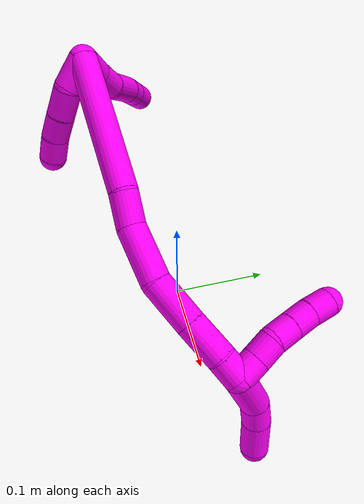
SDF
<sdf version="1.7">
 <world name="default">
  <model name="10">
   <static>0</static>
   <link name="10">
    <collision name="collision-cylinder-e_1_2_8">
     <pose>-0.000711 0.012213 -0.004058 -1.8916 -0.055186 0.076471</pose>
     <geometry><cylinder><radius>0.0125</radius><length>0.025778</length></cylinder></geometry>
     <surface>
      <friction><ode><mu>1.16</mu><mu2>1.16</mu2><slip1>0</slip1><slip2>0</slip2></ode></friction>
      <contact><ode><kp>1e+06</kp><kd>1</kd><max_vel>0</max_vel><min_depth>0.001</min_depth></ode></contact>
     </surface>
    </collision>
    <visual name="visual-cylinder-e_1_2_8">
     <pose>-0.000711 0.012213 -0.004058 -1.8916 -0.055186 0.076471</pose>
     <geometry><cylinder><radius>0.0125</radius><length>0.025778</length></cylinder></geometry>
     <material><ambient>1 0 0.964706 1</ambient></material>
    </visual>
    <collision name="collision-cylinder-e_2_8_9">
     <pose>-0.001595 0.037327 -0.011709 -1.8424 -0.012908 0.016994</pose>
     <geometry><cylinder><radius>0.0125</radius><length>0.026787</length></cylinder></geometry>
     <surface>
      <friction><ode><mu>1.16</mu><mu2>1.16</mu2><slip1>0</slip1><slip2>0</slip2></ode></friction>
      <contact><ode><kp>1e+06</kp><kd>1</kd><max_vel>0</max_vel><min_depth>0.001</min_depth></ode></contact>
     </surface>
    </collision>
    <visual name="visual-cylinder-e_2_8_9">
     <pose>-0.001595 0.037327 -0.011709 -1.8424 -0.012908 0.016994</pose>
     <geometry><cylinder><radius>0.0125</radius><length>0.026787</length></cylinder></geometry>
     <material><ambient>1 0 0.964706 1</ambient></material>
    </visual>
    <collision name="collision-cylinder-e_3_9_10">
     <pose>-0.006911 0.072029 -0.01548 -1.57896 -0.231666 0.233548</pose>
     <geometry><cylinder><radius>0.0125</radius><length>0.0448</length></cylinder></geometry>
     <surface>
      <friction><ode><mu>1.16</mu><mu2>1.16</mu2><slip1>0</slip1><slip2>0</slip2></ode></friction>
      <contact><ode><kp>1e+06</kp><kd>1</kd><max_vel>0</max_vel><min_depth>0.001</min_depth></ode></contact>
     </surface>
    </collision>
    <visual name="visual-cylinder-e_3_9_10">
     <pose>-0.006911 0.072029 -0.01548 -1.57896 -0.231666 0.233548</pose>
     <geometry><cylinder><radius>0.0125</radius><length>0.0448</length></cylinder></geometry>
     <material><ambient>1 0 0.964706 1</ambient></material>
    </visual>
    <collision name="collision-cylinder-e_4_10_11">
     <pose>-0.014964 0.104501 -0.016752 -1.673 -0.264927 0.293101</pose>
     <geometry><cylinder><radius>0.0125</radius><length>0.02223</length></cylinder></geometry>
     <surface>
      <friction><ode><mu>1.16</mu><mu2>1.16</mu2><slip1>0</slip1><slip2>0</slip2></ode></friction>
      <contact><ode><kp>1e+06</kp><kd>1</kd><max_vel>0</max_vel><min_depth>0.001</min_depth></ode></contact>
     </surface>
    </collision>
    <visual name="visual-cylinder-e_4_10_11">
     <pose>-0.014964 0.104501 -0.016752 -1.673 -0.264927 0.293101</pose>
     <geometry><cylinder><radius>0.0125</radius><length>0.02223</length></cylinder></geometry>
     <material><ambient>1 0 0.964706 1</ambient></material>
    </visual>
    <collision name="collision-cylinder-e_5_11_6">
     <pose>-0.021854 0.129763 -0.019397 -1.67667 -0.264873 0.29411</pose>
     <geometry><cylinder><radius>0.0125</radius><length>0.030405</length></cylinder></geometry>
     <surface>
      <friction><ode><mu>1.16</mu><mu2>1.16</mu2><slip1>0</slip1><slip2>0</slip2></ode></friction>
      <contact><ode><kp>1e+06</kp><kd>1</kd><max_vel>0</max_vel><min_depth>0.001</min_depth></ode></contact>
     </surface>
    </collision>
    <visual name="visual-cylinder-e_5_11_6">
     <pose>-0.021854 0.129763 -0.019397 -1.67667 -0.264873 0.29411</pose>
     <geometry><cylinder><radius>0.0125</radius><length>0.030405</length></cylinder></geometry>
     <material><ambient>1 0 0.964706 1</ambient></material>
    </visual>
    <collision name="collision-cylinder-e_1_2_12">
     <pose>-0.003957 -0.000805 -0.013299 3.0811 -0.2887 -2.73118</pose>
     <geometry><cylinder><radius>0.0125</radius><length>0.027797</length></cylinder></geometry>
     <surface>
      <friction><ode><mu>1.16</mu><mu2>1.16</mu2><slip1>0</slip1><slip2>0</slip2></ode></friction>
      <contact><ode><kp>1e+06</kp><kd>1</kd><max_vel>0</max_vel><min_depth>0.001</min_depth></ode></contact>
     </surface>
    </collision>
    <visual name="visual-cylinder-e_1_2_12">
     <pose>-0.003957 -0.000805 -0.013299 3.0811 -0.2887 -2.73118</pose>
     <geometry><cylinder><radius>0.0125</radius><length>0.027797</length></cylinder></geometry>
     <material><ambient>1 0 0.964706 1</ambient></material>
    </visual>
    <collision name="collision-cylinder-e_2_12_13">
     <pose>-0.011469 0.001929 -0.038906 -2.86159 -0.270786 1.5369</pose>
     <geometry><cylinder><radius>0.0125</radius><length>0.026583</length></cylinder></geometry>
     <surface>
      <friction><ode><mu>1.16</mu><mu2>1.16</mu2><slip1>0</slip1><slip2>0</slip2></ode></friction>
      <contact><ode><kp>1e+06</kp><kd>1</kd><max_vel>0</max_vel><min_depth>0.001</min_depth></ode></contact>
     </surface>
    </collision>
    <visual name="visual-cylinder-e_2_12_13">
     <pose>-0.011469 0.001929 -0.038906 -2.86159 -0.270786 1.5369</pose>
     <geometry><cylinder><radius>0.0125</radius><length>0.026583</length></cylinder></geometry>
     <material><ambient>1 0 0.964706 1</ambient></material>
    </visual>
    <collision name="collision-cylinder-e_3_13_14">
     <pose>-0.018405 0.00914 -0.061797 -2.80757 -0.293074 1.43825</pose>
     <geometry><cylinder><radius>0.0125</radius><length>0.0234</length></cylinder></geometry>
     <surface>
      <friction><ode><mu>1.16</mu><mu2>1.16</mu2><slip1>0</slip1><slip2>0</slip2></ode></friction>
      <contact><ode><kp>1e+06</kp><kd>1</kd><max_vel>0</max_vel><min_depth>0.001</min_depth></ode></contact>
     </surface>
    </collision>
    <visual name="visual-cylinder-e_3_13_14">
     <pose>-0.018405 0.00914 -0.061797 -2.80757 -0.293074 1.43825</pose>
     <geometry><cylinder><radius>0.0125</radius><length>0.0234</length></cylinder></geometry>
     <material><ambient>1 0 0.964706 1</ambient></material>
    </visual>
    <collision name="collision-cylinder-e_4_14_5">
     <pose>-0.023873 0.016896 -0.082498 -2.75807 -0.189098 0.908726</pose>
     <geometry><cylinder><radius>0.0125</radius><length>0.02222</length></cylinder></geometry>
     <surface>
      <friction><ode><mu>1.16</mu><mu2>1.16</mu2><slip1>0</slip1><slip2>0</slip2></ode></friction>
      <contact><ode><kp>1e+06</kp><kd>1</kd><max_vel>0</max_vel><min_depth>0.001</min_depth></ode></contact>
     </surface>
    </collision>
    <visual name="visual-cylinder-e_4_14_5">
     <pose>-0.023873 0.016896 -0.082498 -2.75807 -0.189098 0.908726</pose>
     <geometry><cylinder><radius>0.0125</radius><length>0.02222</length></cylinder></geometry>
     <material><ambient>1 0 0.964706 1</ambient></material>
    </visual>
    <collision name="collision-cylinder-e_1_2_15">
     <pose>0.041239 -0.009941 -0.045019 2.92425 0.729764 2.58518</pose>
     <geometry><cylinder><radius>0.0125</radius><length>0.123712</length></cylinder></geometry>
     <surface>
      <friction><ode><mu>1.16</mu><mu2>1.16</mu2><slip1>0</slip1><slip2>0</slip2></ode></friction>
      <contact><ode><kp>1e+06</kp><kd>1</kd><max_vel>0</max_vel><min_depth>0.001</min_depth></ode></contact>
     </surface>
    </collision>
    <visual name="visual-cylinder-e_1_2_15">
     <pose>0.041239 -0.009941 -0.045019 2.92425 0.729764 2.58518</pose>
     <geometry><cylinder><radius>0.0125</radius><length>0.123712</length></cylinder></geometry>
     <material><ambient>1 0 0.964706 1</ambient></material>
    </visual>
    <collision name="collision-cylinder-e_2_15_16">
     <pose>0.090402 -0.020388 -0.10233 3.10053 0.572173 3.00219</pose>
     <geometry><cylinder><radius>0.0125</radius><length>0.029269</length></cylinder></geometry>
     <surface>
      <friction><ode><mu>1.16</mu><mu2>1.16</mu2><slip1>0</slip1><slip2>0</slip2></ode></friction>
      <contact><ode><kp>1e+06</kp><kd>1</kd><max_vel>0</max_vel><min_depth>0.001</min_depth></ode></contact>
     </surface>
    </collision>
    <visual name="visual-cylinder-e_2_15_16">
     <pose>0.090402 -0.020388 -0.10233 3.10053 0.572173 3.00219</pose>
     <geometry><cylinder><radius>0.0125</radius><length>0.029269</length></cylinder></geometry>
     <material><ambient>1 0 0.964706 1</ambient></material>
    </visual>
    <collision name="collision-cylinder-e_3_16_17">
     <pose>0.116569 -0.023461 -0.13063 2.98253 0.844287 2.79036</pose>
     <geometry><cylinder><radius>0.0125</radius><length>0.04881</length></cylinder></geometry>
     <surface>
      <friction><ode><mu>1.16</mu><mu2>1.16</mu2><slip1>0</slip1><slip2>0</slip2></ode></friction>
      <contact><ode><kp>1e+06</kp><kd>1</kd><max_vel>0</max_vel><min_depth>0.001</min_depth></ode></contact>
     </surface>
    </collision>
    <visual name="visual-cylinder-e_3_16_17">
     <pose>0.116569 -0.023461 -0.13063 2.98253 0.844287 2.79036</pose>
     <geometry><cylinder><radius>0.0125</radius><length>0.04881</length></cylinder></geometry>
     <material><ambient>1 0 0.964706 1</ambient></material>
    </visual>
    <collision name="collision-cylinder-e_4_17_18">
     <pose>0.152575 -0.023502 -0.157089 -2.90444 1.02645 -2.72497</pose>
     <geometry><cylinder><radius>0.0125</radius><length>0.041531</length></cylinder></geometry>
     <surface>
      <friction><ode><mu>1.16</mu><mu2>1.16</mu2><slip1>0</slip1><slip2>0</slip2></ode></friction>
      <contact><ode><kp>1e+06</kp><kd>1</kd><max_vel>0</max_vel><min_depth>0.001</min_depth></ode></contact>
     </surface>
    </collision>
    <visual name="visual-cylinder-e_4_17_18">
     <pose>0.152575 -0.023502 -0.157089 -2.90444 1.02645 -2.72497</pose>
     <geometry><cylinder><radius>0.0125</radius><length>0.041531</length></cylinder></geometry>
     <material><ambient>1 0 0.964706 1</ambient></material>
    </visual>
    <collision name="collision-cylinder-e_5_18_19">
     <pose>0.185817 -0.018593 -0.176126 -2.87082 1.04852 -2.67887</pose>
     <geometry><cylinder><radius>0.0125</radius><length>0.035716</length></cylinder></geometry>
     <surface>
      <friction><ode><mu>1.16</mu><mu2>1.16</mu2><slip1>0</slip1><slip2>0</slip2></ode></friction>
      <contact><ode><kp>1e+06</kp><kd>1</kd><max_vel>0</max_vel><min_depth>0.001</min_depth></ode></contact>
     </surface>
    </collision>
    <visual name="visual-cylinder-e_5_18_19">
     <pose>0.185817 -0.018593 -0.176126 -2.87082 1.04852 -2.67887</pose>
     <geometry><cylinder><radius>0.0125</radius><length>0.035716</length></cylinder></geometry>
     <material><ambient>1 0 0.964706 1</ambient></material>
    </visual>
    <collision name="collision-cylinder-e_6_19_1">
     <pose>0.209594 -0.013505 -0.190511 -2.70531 0.91387 -2.29442</pose>
     <geometry><cylinder><radius>0.0125</radius><length>0.020962</length></cylinder></geometry>
     <surface>
      <friction><ode><mu>1.16</mu><mu2>1.16</mu2><slip1>0</slip1><slip2>0</slip2></ode></friction>
      <contact><ode><kp>1e+06</kp><kd>1</kd><max_vel>0</max_vel><min_depth>0.001</min_depth></ode></contact>
     </surface>
    </collision>
    <visual name="visual-cylinder-e_6_19_1">
     <pose>0.209594 -0.013505 -0.190511 -2.70531 0.91387 -2.29442</pose>
     <geometry><cylinder><radius>0.0125</radius><length>0.020962</length></cylinder></geometry>
     <material><ambient>1 0 0.964706 1</ambient></material>
    </visual>
    <collision name="collision-cylinder-e_1_1_20">
     <pose>0.22044 -0.004593 -0.188897 -0.69701 0.257436 -0.093986</pose>
     <geometry><cylinder><radius>0.0125</radius><length>0.02</length></cylinder></geometry>
     <surface>
      <friction><ode><mu>1.16</mu><mu2>1.16</mu2><slip1>0</slip1><slip2>0</slip2></ode></friction>
      <contact><ode><kp>1e+06</kp><kd>1</kd><max_vel>0</max_vel><min_depth>0.001</min_depth></ode></contact>
     </surface>
    </collision>
    <visual name="visual-cylinder-e_1_1_20">
     <pose>0.22044 -0.004593 -0.188897 -0.69701 0.257436 -0.093986</pose>
     <geometry><cylinder><radius>0.0125</radius><length>0.02</length></cylinder></geometry>
     <material><ambient>1 0 0.964706 1</ambient></material>
    </visual>
    <collision name="collision-cylinder-e_2_20_21">
     <pose>0.225614 0.006916 -0.173421 -0.581668 0.265974 -0.080042</pose>
     <geometry><cylinder><radius>0.0125</radius><length>0.02</length></cylinder></geometry>
     <surface>
      <friction><ode><mu>1.16</mu><mu2>1.16</mu2><slip1>0</slip1><slip2>0</slip2></ode></friction>
      <contact><ode><kp>1e+06</kp><kd>1</kd><max_vel>0</max_vel><min_depth>0.001</min_depth></ode></contact>
     </surface>
    </collision>
    <visual name="visual-cylinder-e_2_20_21">
     <pose>0.225614 0.006916 -0.173421 -0.581668 0.265974 -0.080042</pose>
     <geometry><cylinder><radius>0.0125</radius><length>0.02</length></cylinder></geometry>
     <material><ambient>1 0 0.964706 1</ambient></material>
    </visual>
    <collision name="collision-cylinder-e_3_21_22">
     <pose>0.231676 0.019606 -0.159562 -0.905549 0.350481 -0.171845</pose>
     <geometry><cylinder><radius>0.0125</radius><length>0.02</length></cylinder></geometry>
     <surface>
      <friction><ode><mu>1.16</mu><mu2>1.16</mu2><slip1>0</slip1><slip2>0</slip2></ode></friction>
      <contact><ode><kp>1e+06</kp><kd>1</kd><max_vel>0</max_vel><min_depth>0.001</min_depth></ode></contact>
     </surface>
    </collision>
    <visual name="visual-cylinder-e_3_21_22">
     <pose>0.231676 0.019606 -0.159562 -0.905549 0.350481 -0.171845</pose>
     <geometry><cylinder><radius>0.0125</radius><length>0.02</length></cylinder></geometry>
     <material><ambient>1 0 0.964706 1</ambient></material>
    </visual>
    <collision name="collision-cylinder-e_4_22_23">
     <pose>0.238742 0.034199 -0.147855 -0.883727 0.371723 -0.177433</pose>
     <geometry><cylinder><radius>0.0125</radius><length>0.02</length></cylinder></geometry>
     <surface>
      <friction><ode><mu>1.16</mu><mu2>1.16</mu2><slip1>0</slip1><slip2>0</slip2></ode></friction>
      <contact><ode><kp>1e+06</kp><kd>1</kd><max_vel>0</max_vel><min_depth>0.001</min_depth></ode></contact>
     </surface>
    </collision>
    <visual name="visual-cylinder-e_4_22_23">
     <pose>0.238742 0.034199 -0.147855 -0.883727 0.371723 -0.177433</pose>
     <geometry><cylinder><radius>0.0125</radius><length>0.02</length></cylinder></geometry>
     <material><ambient>1 0 0.964706 1</ambient></material>
    </visual>
    <collision name="collision-cylinder-e_5_23_4">
     <pose>0.246899 0.048446 -0.136477 -0.910726 0.469509 -0.233169</pose>
     <geometry><cylinder><radius>0.0125</radius><length>0.02</length></cylinder></geometry>
     <surface>
      <friction><ode><mu>1.16</mu><mu2>1.16</mu2><slip1>0</slip1><slip2>0</slip2></ode></friction>
      <contact><ode><kp>1e+06</kp><kd>1</kd><max_vel>0</max_vel><min_depth>0.001</min_depth></ode></contact>
     </surface>
    </collision>
    <visual name="visual-cylinder-e_5_23_4">
     <pose>0.246899 0.048446 -0.136477 -0.910726 0.469509 -0.233169</pose>
     <geometry><cylinder><radius>0.0125</radius><length>0.02</length></cylinder></geometry>
     <material><ambient>1 0 0.964706 1</ambient></material>
    </visual>
    <collision name="collision-cylinder-e_1_1_24">
     <pose>0.223526 0.004979 -0.21061 -2.30698 0.258583 -0.570526</pose>
     <geometry><cylinder><radius>0.0125</radius><length>0.044051</length></cylinder></geometry>
     <surface>
      <friction><ode><mu>1.16</mu><mu2>1.16</mu2><slip1>0</slip1><slip2>0</slip2></ode></friction>
      <contact><ode><kp>1e+06</kp><kd>1</kd><max_vel>0</max_vel><min_depth>0.001</min_depth></ode></contact>
     </surface>
    </collision>
    <visual name="visual-cylinder-e_1_1_24">
     <pose>0.223526 0.004979 -0.21061 -2.30698 0.258583 -0.570526</pose>
     <geometry><cylinder><radius>0.0125</radius><length>0.044051</length></cylinder></geometry>
     <material><ambient>1 0 0.964706 1</ambient></material>
    </visual>
    <collision name="collision-cylinder-e_2_24_25">
     <pose>0.231405 0.02596 -0.234683 -2.65255 0.200175 -0.765276</pose>
     <geometry><cylinder><radius>0.0125</radius><length>0.022597</length></cylinder></geometry>
     <surface>
      <friction><ode><mu>1.16</mu><mu2>1.16</mu2><slip1>0</slip1><slip2>0</slip2></ode></friction>
      <contact><ode><kp>1e+06</kp><kd>1</kd><max_vel>0</max_vel><min_depth>0.001</min_depth></ode></contact>
     </surface>
    </collision>
    <visual name="visual-cylinder-e_2_24_25">
     <pose>0.231405 0.02596 -0.234683 -2.65255 0.200175 -0.765276</pose>
     <geometry><cylinder><radius>0.0125</radius><length>0.022597</length></cylinder></geometry>
     <material><ambient>1 0 0.964706 1</ambient></material>
    </visual>
    <collision name="collision-cylinder-e_3_25_3">
     <pose>0.235581 0.037108 -0.259917 -2.77442 0.115958 -0.605967</pose>
     <geometry><cylinder><radius>0.0125</radius><length>0.033352</length></cylinder></geometry>
     <surface>
      <friction><ode><mu>1.16</mu><mu2>1.16</mu2><slip1>0</slip1><slip2>0</slip2></ode></friction>
      <contact><ode><kp>1e+06</kp><kd>1</kd><max_vel>0</max_vel><min_depth>0.001</min_depth></ode></contact>
     </surface>
    </collision>
    <visual name="visual-cylinder-e_3_25_3">
     <pose>0.235581 0.037108 -0.259917 -2.77442 0.115958 -0.605967</pose>
     <geometry><cylinder><radius>0.0125</radius><length>0.033352</length></cylinder></geometry>
     <material><ambient>1 0 0.964706 1</ambient></material>
    </visual>
    <collision name="collision-sphere-3">
     <pose>0.23751 0.043054 -0.275377 0 -0 0</pose>
     <geometry><sphere><radius>0.0125</radius></sphere></geometry>
     <surface>
      <friction><ode><mu>1.16</mu><mu2>1.16</mu2><slip1>0</slip1><slip2>0</slip2></ode></friction>
      <contact><ode><kp>1e+06</kp><kd>1</kd><max_vel>0</max_vel><min_depth>0.001</min_depth></ode></contact>
     </surface>
    </collision>
    <visual name="visual-sphere-3">
     <pose>0.23751 0.043054 -0.275377 0 -0 0</pose>
     <geometry><sphere><radius>0.0125</radius></sphere></geometry>
     <material><ambient>1 0 0.964706 1</ambient></material>
    </visual>
    <collision name="collision-sphere-25">
     <pose>0.233651 0.031161 -0.244457 0 -0 0</pose>
     <geometry><sphere><radius>0.0125</radius></sphere></geometry>
     <surface>
      <friction><ode><mu>1.16</mu><mu2>1.16</mu2><slip1>0</slip1><slip2>0</slip2></ode></friction>
      <contact><ode><kp>1e+06</kp><kd>1</kd><max_vel>0</max_vel><min_depth>0.001</min_depth></ode></contact>
     </surface>
    </collision>
    <visual name="visual-sphere-25">
     <pose>0.233651 0.031161 -0.244457 0 -0 0</pose>
     <geometry><sphere><radius>0.0125</radius></sphere></geometry>
     <material><ambient>1 0 0.964706 1</ambient></material>
    </visual>
    <collision name="collision-sphere-24">
     <pose>0.229158 0.020758 -0.224908 0 -0 0</pose>
     <geometry><sphere><radius>0.0125</radius></sphere></geometry>
     <surface>
      <friction><ode><mu>1.16</mu><mu2>1.16</mu2><slip1>0</slip1><slip2>0</slip2></ode></friction>
      <contact><ode><kp>1e+06</kp><kd>1</kd><max_vel>0</max_vel><min_depth>0.001</min_depth></ode></contact>
     </surface>
    </collision>
    <visual name="visual-sphere-24">
     <pose>0.229158 0.020758 -0.224908 0 -0 0</pose>
     <geometry><sphere><radius>0.0125</radius></sphere></geometry>
     <material><ambient>1 0 0.964706 1</ambient></material>
    </visual>
    <collision name="collision-sphere-4">
     <pose>0.251423 0.055491 -0.131009 0 -0 0</pose>
     <geometry><sphere><radius>0.0125</radius></sphere></geometry>
     <surface>
      <friction><ode><mu>1.16</mu><mu2>1.16</mu2><slip1>0</slip1><slip2>0</slip2></ode></friction>
      <contact><ode><kp>1e+06</kp><kd>1</kd><max_vel>0</max_vel><min_depth>0.001</min_depth></ode></contact>
     </surface>
    </collision>
    <visual name="visual-sphere-4">
     <pose>0.251423 0.055491 -0.131009 0 -0 0</pose>
     <geometry><sphere><radius>0.0125</radius></sphere></geometry>
     <material><ambient>1 0 0.964706 1</ambient></material>
    </visual>
    <collision name="collision-sphere-23">
     <pose>0.242374 0.041402 -0.141945 0 -0 0</pose>
     <geometry><sphere><radius>0.0125</radius></sphere></geometry>
     <surface>
      <friction><ode><mu>1.16</mu><mu2>1.16</mu2><slip1>0</slip1><slip2>0</slip2></ode></friction>
      <contact><ode><kp>1e+06</kp><kd>1</kd><max_vel>0</max_vel><min_depth>0.001</min_depth></ode></contact>
     </surface>
    </collision>
    <visual name="visual-sphere-23">
     <pose>0.242374 0.041402 -0.141945 0 -0 0</pose>
     <geometry><sphere><radius>0.0125</radius></sphere></geometry>
     <material><ambient>1 0 0.964706 1</ambient></material>
    </visual>
    <collision name="collision-sphere-22">
     <pose>0.23511 0.026996 -0.153764 0 -0 0</pose>
     <geometry><sphere><radius>0.0125</radius></sphere></geometry>
     <surface>
      <friction><ode><mu>1.16</mu><mu2>1.16</mu2><slip1>0</slip1><slip2>0</slip2></ode></friction>
      <contact><ode><kp>1e+06</kp><kd>1</kd><max_vel>0</max_vel><min_depth>0.001</min_depth></ode></contact>
     </surface>
    </collision>
    <visual name="visual-sphere-22">
     <pose>0.23511 0.026996 -0.153764 0 -0 0</pose>
     <geometry><sphere><radius>0.0125</radius></sphere></geometry>
     <material><ambient>1 0 0.964706 1</ambient></material>
    </visual>
    <collision name="collision-sphere-21">
     <pose>0.228243 0.012217 -0.165359 0 -0 0</pose>
     <geometry><sphere><radius>0.0125</radius></sphere></geometry>
     <surface>
      <friction><ode><mu>1.16</mu><mu2>1.16</mu2><slip1>0</slip1><slip2>0</slip2></ode></friction>
      <contact><ode><kp>1e+06</kp><kd>1</kd><max_vel>0</max_vel><min_depth>0.001</min_depth></ode></contact>
     </surface>
    </collision>
    <visual name="visual-sphere-21">
     <pose>0.228243 0.012217 -0.165359 0 -0 0</pose>
     <geometry><sphere><radius>0.0125</radius></sphere></geometry>
     <material><ambient>1 0 0.964706 1</ambient></material>
    </visual>
    <collision name="collision-sphere-20">
     <pose>0.222986 0.001615 -0.181482 0 -0 0</pose>
     <geometry><sphere><radius>0.0125</radius></sphere></geometry>
     <surface>
      <friction><ode><mu>1.16</mu><mu2>1.16</mu2><slip1>0</slip1><slip2>0</slip2></ode></friction>
      <contact><ode><kp>1e+06</kp><kd>1</kd><max_vel>0</max_vel><min_depth>0.001</min_depth></ode></contact>
     </surface>
    </collision>
    <visual name="visual-sphere-20">
     <pose>0.222986 0.001615 -0.181482 0 -0 0</pose>
     <geometry><sphere><radius>0.0125</radius></sphere></geometry>
     <material><ambient>1 0 0.964706 1</ambient></material>
    </visual>
    <collision name="collision-sphere-6">
     <pose>-0.025834 0.144353 -0.020948 0 -0 0</pose>
     <geometry><sphere><radius>0.0125</radius></sphere></geometry>
     <surface>
      <friction><ode><mu>1.16</mu><mu2>1.16</mu2><slip1>0</slip1><slip2>0</slip2></ode></friction>
      <contact><ode><kp>1e+06</kp><kd>1</kd><max_vel>0</max_vel><min_depth>0.001</min_depth></ode></contact>
     </surface>
    </collision>
    <visual name="visual-sphere-6">
     <pose>-0.025834 0.144353 -0.020948 0 -0 0</pose>
     <geometry><sphere><radius>0.0125</radius></sphere></geometry>
     <material><ambient>1 0 0.964706 1</ambient></material>
    </visual>
    <collision name="collision-sphere-11">
     <pose>-0.017874 0.115173 -0.017847 0 -0 0</pose>
     <geometry><sphere><radius>0.0125</radius></sphere></geometry>
     <surface>
      <friction><ode><mu>1.16</mu><mu2>1.16</mu2><slip1>0</slip1><slip2>0</slip2></ode></friction>
      <contact><ode><kp>1e+06</kp><kd>1</kd><max_vel>0</max_vel><min_depth>0.001</min_depth></ode></contact>
     </surface>
    </collision>
    <visual name="visual-sphere-11">
     <pose>-0.017874 0.115173 -0.017847 0 -0 0</pose>
     <geometry><sphere><radius>0.0125</radius></sphere></geometry>
     <material><ambient>1 0 0.964706 1</ambient></material>
    </visual>
    <collision name="collision-sphere-10">
     <pose>-0.012054 0.09383 -0.015658 0 -0 0</pose>
     <geometry><sphere><radius>0.0125</radius></sphere></geometry>
     <surface>
      <friction><ode><mu>1.16</mu><mu2>1.16</mu2><slip1>0</slip1><slip2>0</slip2></ode></friction>
      <contact><ode><kp>1e+06</kp><kd>1</kd><max_vel>0</max_vel><min_depth>0.001</min_depth></ode></contact>
     </surface>
    </collision>
    <visual name="visual-sphere-10">
     <pose>-0.012054 0.09383 -0.015658 0 -0 0</pose>
     <geometry><sphere><radius>0.0125</radius></sphere></geometry>
     <material><ambient>1 0 0.964706 1</ambient></material>
    </visual>
    <collision name="collision-sphere-9">
     <pose>-0.001768 0.050228 -0.015302 0 -0 0</pose>
     <geometry><sphere><radius>0.0125</radius></sphere></geometry>
     <surface>
      <friction><ode><mu>1.16</mu><mu2>1.16</mu2><slip1>0</slip1><slip2>0</slip2></ode></friction>
      <contact><ode><kp>1e+06</kp><kd>1</kd><max_vel>0</max_vel><min_depth>0.001</min_depth></ode></contact>
     </surface>
    </collision>
    <visual name="visual-sphere-9">
     <pose>-0.001768 0.050228 -0.015302 0 -0 0</pose>
     <geometry><sphere><radius>0.0125</radius></sphere></geometry>
     <material><ambient>1 0 0.964706 1</ambient></material>
    </visual>
    <collision name="collision-sphere-2">
     <geometry><sphere><radius>0.0125</radius></sphere></geometry>
     <surface>
      <friction><ode><mu>1.16</mu><mu2>1.16</mu2><slip1>0</slip1><slip2>0</slip2></ode></friction>
      <contact><ode><kp>1e+06</kp><kd>1</kd><max_vel>0</max_vel><min_depth>0.001</min_depth></ode></contact>
     </surface>
    </collision>
    <visual name="visual-sphere-2">
     <geometry><sphere><radius>0.0125</radius></sphere></geometry>
     <material><ambient>1 0 0.964706 1</ambient></material>
    </visual>
    <collision name="collision-sphere-19">
     <pose>0.201294 -0.01621 -0.18471 0 -0 0</pose>
     <geometry><sphere><radius>0.0125</radius></sphere></geometry>
     <surface>
      <friction><ode><mu>1.16</mu><mu2>1.16</mu2><slip1>0</slip1><slip2>0</slip2></ode></friction>
      <contact><ode><kp>1e+06</kp><kd>1</kd><max_vel>0</max_vel><min_depth>0.001</min_depth></ode></contact>
     </surface>
    </collision>
    <visual name="visual-sphere-19">
     <pose>0.201294 -0.01621 -0.18471 0 -0 0</pose>
     <geometry><sphere><radius>0.0125</radius></sphere></geometry>
     <material><ambient>1 0 0.964706 1</ambient></material>
    </visual>
    <collision name="collision-sphere-8">
     <pose>-0.001422 0.024425 -0.008116 0 -0 0</pose>
     <geometry><sphere><radius>0.0125</radius></sphere></geometry>
     <surface>
      <friction><ode><mu>1.16</mu><mu2>1.16</mu2><slip1>0</slip1><slip2>0</slip2></ode></friction>
      <contact><ode><kp>1e+06</kp><kd>1</kd><max_vel>0</max_vel><min_depth>0.001</min_depth></ode></contact>
     </surface>
    </collision>
    <visual name="visual-sphere-8">
     <pose>-0.001422 0.024425 -0.008116 0 -0 0</pose>
     <geometry><sphere><radius>0.0125</radius></sphere></geometry>
     <material><ambient>1 0 0.964706 1</ambient></material>
    </visual>
    <collision name="collision-sphere-12">
     <pose>-0.007914 -0.001611 -0.026598 0 -0 0</pose>
     <geometry><sphere><radius>0.0125</radius></sphere></geometry>
     <surface>
      <friction><ode><mu>1.16</mu><mu2>1.16</mu2><slip1>0</slip1><slip2>0</slip2></ode></friction>
      <contact><ode><kp>1e+06</kp><kd>1</kd><max_vel>0</max_vel><min_depth>0.001</min_depth></ode></contact>
     </surface>
    </collision>
    <visual name="visual-sphere-12">
     <pose>-0.007914 -0.001611 -0.026598 0 -0 0</pose>
     <geometry><sphere><radius>0.0125</radius></sphere></geometry>
     <material><ambient>1 0 0.964706 1</ambient></material>
    </visual>
    <collision name="collision-sphere-13">
     <pose>-0.015025 0.005468 -0.051215 0 -0 0</pose>
     <geometry><sphere><radius>0.0125</radius></sphere></geometry>
     <surface>
      <friction><ode><mu>1.16</mu><mu2>1.16</mu2><slip1>0</slip1><slip2>0</slip2></ode></friction>
      <contact><ode><kp>1e+06</kp><kd>1</kd><max_vel>0</max_vel><min_depth>0.001</min_depth></ode></contact>
     </surface>
    </collision>
    <visual name="visual-sphere-13">
     <pose>-0.015025 0.005468 -0.051215 0 -0 0</pose>
     <geometry><sphere><radius>0.0125</radius></sphere></geometry>
     <material><ambient>1 0 0.964706 1</ambient></material>
    </visual>
    <collision name="collision-sphere-14">
     <pose>-0.021785 0.012812 -0.072379 0 -0 0</pose>
     <geometry><sphere><radius>0.0125</radius></sphere></geometry>
     <surface>
      <friction><ode><mu>1.16</mu><mu2>1.16</mu2><slip1>0</slip1><slip2>0</slip2></ode></friction>
      <contact><ode><kp>1e+06</kp><kd>1</kd><max_vel>0</max_vel><min_depth>0.001</min_depth></ode></contact>
     </surface>
    </collision>
    <visual name="visual-sphere-14">
     <pose>-0.021785 0.012812 -0.072379 0 -0 0</pose>
     <geometry><sphere><radius>0.0125</radius></sphere></geometry>
     <material><ambient>1 0 0.964706 1</ambient></material>
    </visual>
    <collision name="collision-sphere-5">
     <pose>-0.025962 0.020979 -0.092617 0 -0 0</pose>
     <geometry><sphere><radius>0.0125</radius></sphere></geometry>
     <surface>
      <friction><ode><mu>1.16</mu><mu2>1.16</mu2><slip1>0</slip1><slip2>0</slip2></ode></friction>
      <contact><ode><kp>1e+06</kp><kd>1</kd><max_vel>0</max_vel><min_depth>0.001</min_depth></ode></contact>
     </surface>
    </collision>
    <visual name="visual-sphere-5">
     <pose>-0.025962 0.020979 -0.092617 0 -0 0</pose>
     <geometry><sphere><radius>0.0125</radius></sphere></geometry>
     <material><ambient>1 0 0.964706 1</ambient></material>
    </visual>
    <collision name="collision-sphere-15">
     <pose>0.082478 -0.019883 -0.090037 0 -0 0</pose>
     <geometry><sphere><radius>0.0125</radius></sphere></geometry>
     <surface>
      <friction><ode><mu>1.16</mu><mu2>1.16</mu2><slip1>0</slip1><slip2>0</slip2></ode></friction>
      <contact><ode><kp>1e+06</kp><kd>1</kd><max_vel>0</max_vel><min_depth>0.001</min_depth></ode></contact>
     </surface>
    </collision>
    <visual name="visual-sphere-15">
     <pose>0.082478 -0.019883 -0.090037 0 -0 0</pose>
     <geometry><sphere><radius>0.0125</radius></sphere></geometry>
     <material><ambient>1 0 0.964706 1</ambient></material>
    </visual>
    <collision name="collision-sphere-16">
     <pose>0.098326 -0.020893 -0.114624 0 -0 0</pose>
     <geometry><sphere><radius>0.0125</radius></sphere></geometry>
     <surface>
      <friction><ode><mu>1.16</mu><mu2>1.16</mu2><slip1>0</slip1><slip2>0</slip2></ode></friction>
      <contact><ode><kp>1e+06</kp><kd>1</kd><max_vel>0</max_vel><min_depth>0.001</min_depth></ode></contact>
     </surface>
    </collision>
    <visual name="visual-sphere-16">
     <pose>0.098326 -0.020893 -0.114624 0 -0 0</pose>
     <geometry><sphere><radius>0.0125</radius></sphere></geometry>
     <material><ambient>1 0 0.964706 1</ambient></material>
    </visual>
    <collision name="collision-sphere-17">
     <pose>0.134811 -0.026029 -0.146637 0 -0 0</pose>
     <geometry><sphere><radius>0.0125</radius></sphere></geometry>
     <surface>
      <friction><ode><mu>1.16</mu><mu2>1.16</mu2><slip1>0</slip1><slip2>0</slip2></ode></friction>
      <contact><ode><kp>1e+06</kp><kd>1</kd><max_vel>0</max_vel><min_depth>0.001</min_depth></ode></contact>
     </surface>
    </collision>
    <visual name="visual-sphere-17">
     <pose>0.134811 -0.026029 -0.146637 0 -0 0</pose>
     <geometry><sphere><radius>0.0125</radius></sphere></geometry>
     <material><ambient>1 0 0.964706 1</ambient></material>
    </visual>
    <collision name="collision-sphere-18">
     <pose>0.170339 -0.020976 -0.167542 0 -0 0</pose>
     <geometry><sphere><radius>0.0125</radius></sphere></geometry>
     <surface>
      <friction><ode><mu>1.16</mu><mu2>1.16</mu2><slip1>0</slip1><slip2>0</slip2></ode></friction>
      <contact><ode><kp>1e+06</kp><kd>1</kd><max_vel>0</max_vel><min_depth>0.001</min_depth></ode></contact>
     </surface>
    </collision>
    <visual name="visual-sphere-18">
     <pose>0.170339 -0.020976 -0.167542 0 -0 0</pose>
     <geometry><sphere><radius>0.0125</radius></sphere></geometry>
     <material><ambient>1 0 0.964706 1</ambient></material>
    </visual>
    <collision name="collision-sphere-1">
     <pose>0.217894 -0.010801 -0.196312 0 -0 0</pose>
     <geometry><sphere><radius>0.0125</radius></sphere></geometry>
     <surface>
      <friction><ode><mu>1.16</mu><mu2>1.16</mu2><slip1>0</slip1><slip2>0</slip2></ode></friction>
      <contact><ode><kp>1e+06</kp><kd>1</kd><max_vel>0</max_vel><min_depth>0.001</min_depth></ode></contact>
     </surface>
    </collision>
    <visual name="visual-sphere-1">
     <pose>0.217894 -0.010801 -0.196312 0 -0 0</pose>
     <geometry><sphere><radius>0.0125</radius></sphere></geometry>
     <material><ambient>1 0 0.964706 1</ambient></material>
    </visual>
    <inertial>
     <pose>0.099014 0.014224 -0.103839 0 -0 0</pose>
     <mass>0.75</mass>
     <inertia>
      <ixx>-3e-06</ixx>
      <ixy>0</ixy>
      <ixz>0</ixz>
      <iyy>0.000257</iyy>
      <iyz>0</iyz>
      <izz>-0.000165</izz>
     </inertia>
    </inertial>
   </link>
   <pose>-0.064606 -0.065236 0.261972 -0.622805 -0.052232 0.772337</pose>
  </model>
 </world>
</sdf>
